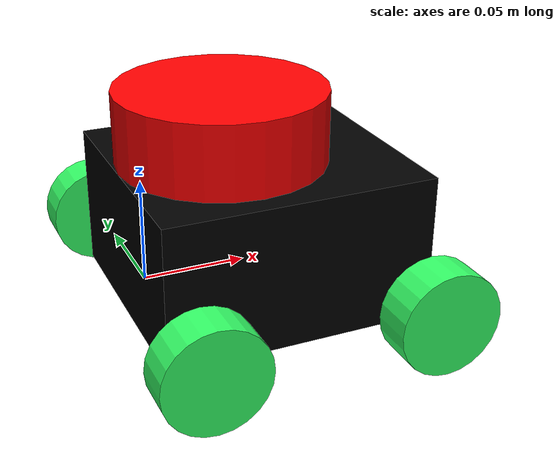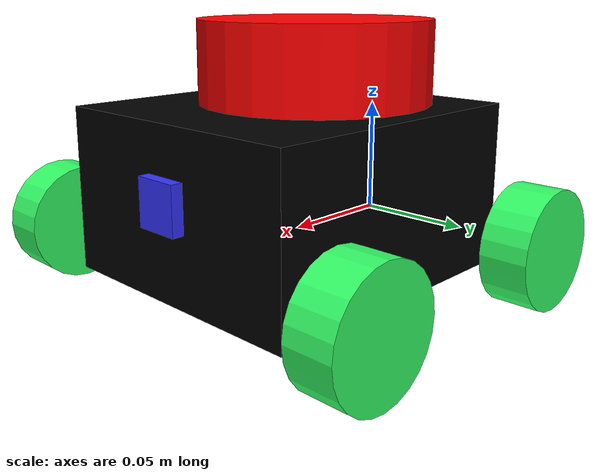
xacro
<?xml version="1.0"?>
<robot xmlns:xacro="http://www.ros.org/wiki/xacro"  name="robot">

   <xacro:arg name="use_ros2_control" default="true"/>
  <xacro:arg name="sim_mode" default="false"/>

   <xacro:include filename="robot_core.xacro"/>

     <xacro:if value="$(arg use_ros2_control)">
        <xacro:include filename="ros2_control.xacro" />
    </xacro:if>
    <xacro:unless value="$(arg use_ros2_control)">
        <xacro:include filename="gazebo_control.xacro" />
    </xacro:unless>

   <xacro:include filename="lidar.xacro"/>

   <xacro:include filename="camera.xacro"/>

</robot>

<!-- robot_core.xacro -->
<robot xmlns:xacro="http://www.ros.org/wiki/xacro">

   <xacro:include filename="inertial_macros.xacro"/>

    <material name="white">
        <color rgba="1 1 1 1"/>
    </material>

    <material name="orange">
        <color rgba="1 0.3 0.1 1"/>
    </material>

    <material name="blue">
        <color rgba="0.2 0.2 1 1"/>
    </material>

    <material name="black">
        <color rgba="0 0 0 1"/>
    </material>

    <material name="red">
        <color rgba="1 0 0 1"/>
    </material>

    <material name="green">
        <color rgba="0.2 1 0.4 1"/>
    </material>

    <link name="base_link">

    </link>

     <!-- BASE_FOOTPRINT LINK -->

     <joint name="base_footprint_joint" type="fixed">
        <parent link="base_link"/>
        <child link="base_footprint"/>
        <origin xyz="0 0 0" rpy="0 0 0"/>
    </joint>

    <link name="base_footprint">
    </link>

<!-- Chassis -->

    <joint name="chassis_joint" type="fixed">

        <parent link="base_link"/>
        <child link="chassis"/>
        <origin xyz="-0.01 0 0"/>

    </joint>

    <link name="chassis">
        <visual>
            <origin xyz="0.065 0 0.02"/>
            <geometry>
                <box size="0.13 0.12 0.07"/>
            </geometry>
            <material name="black"/>
        </visual>
        <collision>
            <origin xyz="0.065 0 0.02" rpy="0 0 0"/>
            <geometry>
                <box size="0.13 0.12 0.07"/>
            </geometry>
        </collision>

        <xacro:inertial_box mass="0.5" x="0.13" y="0.12" z="0.07">
           <origin xyz="0.065 0 0.02" rpy="0 0 0"/>
       </xacro:inertial_box>

    </link>
    <gazebo reference="chassis">
        <material>Gazebo/Black</material>

    </gazebo>

<!-- Left Wheel -->

    <joint name="left_wheel_joint" type="continuous">

        <parent link="base_link"/>
        <child link="left_wheel"/>
        <origin xyz="0 0.085 0" rpy="-${pi/2} 0 0"/>
        <axis xyz="0 0 1"/>

    </joint>

    <link name="left_wheel">

        <visual>
            <geometry>
                <cylinder length="0.02" radius="0.025"/>
            </geometry>

            <material name="green"/>
        </visual>
        <collision>
            <geometry>
                <sphere  radius="0.025"/>
            </geometry>
        </collision>

        <xacro:inertial_cylinder mass="0.1" length="0.02" radius="0.025">
            <origin xyz="0 0 0" rpy="0 0 0"/>
        </xacro:inertial_cylinder>
    </link>

    <gazebo reference="left_wheel">
        <material>Gazebo/Green</material>

    </gazebo>

<!-- Right Wheel -->
     <joint name="right_wheel_joint" type="continuous">

        <parent link="base_link"/>
        <child link="right_wheel"/>
        <origin xyz="0 -0.085 0" rpy="${pi/2} 0 0"/>
        <axis xyz="0 0 -1"/>

    </joint>

    <link name="right_wheel">

        <visual>

            <geometry>
                <cylinder length="0.02" radius="0.025"/>
            </geometry>

            <material name="green"/>

        </visual>
        <collision>

            <geometry>
                <sphere  radius="0.025"/>
            </geometry>
        </collision>

        <xacro:inertial_cylinder mass="0.1" length="0.02" radius="0.025">
            <origin xyz="0 0 0" rpy="0 0 0"/>
        </xacro:inertial_cylinder>

    </link>

    <gazebo reference="right_wheel">
        <material>Gazebo/Green</material>

    </gazebo>

<!-- CASTER WHEEL -->

<joint name="left_caster_wheel_joint" type="fixed">

    <parent link="base_link"/>
    <child link="left_caster_wheel"/>
    <origin xyz="0.11 0.085 0" rpy="-${pi/2} 0 0"/>
    <axis xyz="0 0 1"/>

</joint>

<link name="left_caster_wheel">

    <visual>
        <geometry>
            <cylinder length="0.02" radius="0.025"/>
        </geometry>

        <material name="green"/>
    </visual>
    <collision>
        <geometry>
            <sphere  radius="0.025"/>
        </geometry>
    </collision>

    <xacro:inertial_cylinder mass="0.1" length="0.02" radius="0.025">
        <origin xyz="0 0 0" rpy="0 0 0"/>
    </xacro:inertial_cylinder>
</link>

<gazebo reference="left_caster_wheel">
    <material>Gazebo/Green</material>
    <mu1 value="0.001"/>
    <mu2 value="0.001"/>

</gazebo>

<joint name="right_caster_wheel_joint" type="fixed">

    <parent link="base_link"/>
    <child link="right_caster_wheel"/>
    <origin xyz="0.11 -0.085 0" rpy="${pi/2} 0 0"/>
    <axis xyz="0 0 -1"/>

</joint>

<link name="right_caster_wheel">

    <visual>

        <geometry>
            <cylinder length="0.02" radius="0.025"/>
        </geometry>

        <material name="green"/>

    </visual>
    <collision>

        <geometry>
            <sphere  radius="0.025"/>
        </geometry>
    </collision>

    <xacro:inertial_cylinder mass="0.1" length="0.02" radius="0.025">
        <origin xyz="0 0 0" rpy="0 0 0"/>
    </xacro:inertial_cylinder>

</link>

<gazebo reference="right_caster_wheel">
    <material>Gazebo/Green</material>
    <mu1 value="0.001"/>
    <mu2 value="0.001"/>
</gazebo>

</robot>

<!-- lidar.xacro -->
<robot xmlns:xacro="http://www.ros.org/wiki/xacro" >

    <joint name="laser_joint" type="fixed">
        <parent link="chassis"/>
        <child link="laser_frame"/>
        <origin xyz="0.05 0 0.07" rpy="0 0 0"/>
    </joint>

    <link name="laser_frame">
        <visual>
            <geometry>
                <cylinder radius="0.05" length="0.04"/>
            </geometry>
            <material name="red"/>
        </visual>
        <collision>
            <geometry>
                <cylinder radius="0.05" length="0.04"/>
            </geometry>
        </collision>
        <xacro:inertial_cylinder mass="0.1" length="0.04" radius="0.05">
            <origin xyz="0 0 0" rpy="0 0 0"/>
        </xacro:inertial_cylinder>
    </link>

    <gazebo reference="laser_frame">
        <material>Gazebo/Red</material>

        <sensor name="laser" type="ray">
            <pose> 0 0 0 0 0 0 </pose>
            <visualize>false</visualize>
            <update_rate>10</update_rate>
            <ray>
                <scan>
                    <horizontal>
                        <samples>360</samples>
                        <min_angle>-3.14</min_angle>
                        <max_angle>3.14</max_angle>
                    </horizontal>
                </scan>
                <range>
                    <min>0.3</min>
                    <max>12</max>
                </range>
            </ray>
            <plugin name="laser_controller" filename="libgazebo_ros_ray_sensor.so">
                <ros>
                    <argument>~/out:=scan</argument>
                </ros>
                <output_type>sensor_msgs/LaserScan</output_type>
                <frame_name>laser_frame</frame_name>
            </plugin>
        </sensor>
    </gazebo>

</robot>

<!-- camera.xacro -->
<robot xmlns:xacro="http://www.ros.org/wiki/xacro" >

    <joint name="camera_joint" type="fixed">
        <parent link="chassis"/>
        <child link="camera_link"/>
        <origin xyz="0.13 0 0.025" rpy="0 0 0"/>
    </joint>

    <link name="camera_link">
        <visual>
            <geometry>
                <box size="0.01 0.02 0.02"/>
            </geometry>
            <material name="blue"/>
        </visual>
    </link>

    <joint name="camera_optical_joint" type="fixed">
        <parent link="camera_link"/>
        <child link="camera_link_optical"/>
        <origin xyz="0 0 0" rpy="${-pi/2} 0 ${-pi/2}"/>
    </joint>

    <link name="camera_link_optical"></link>

    <gazebo reference="camera_link">
        <material>Gazebo/Blue</material>

        <sensor name="camera" type="camera">
            <pose> 0 0 0 0 0 0 </pose>
            <visualize>true</visualize>
            <update_rate>10</update_rate>
            <camera>
                <horizontal_fov>1.089</horizontal_fov>
                <image>
                    <format>R8G8B8</format>
                    <width>640</width>
                    <height>480</height>
                </image>
                <clip>
                    <near>0.05</near>
                    <far>8.0</far>
                </clip>
            </camera>
            <plugin name="camera_controller" filename="libgazebo_ros_camera.so">
                <frame_name>camera_link_optical</frame_name>
            </plugin>
        </sensor>
    </gazebo>

</robot>
